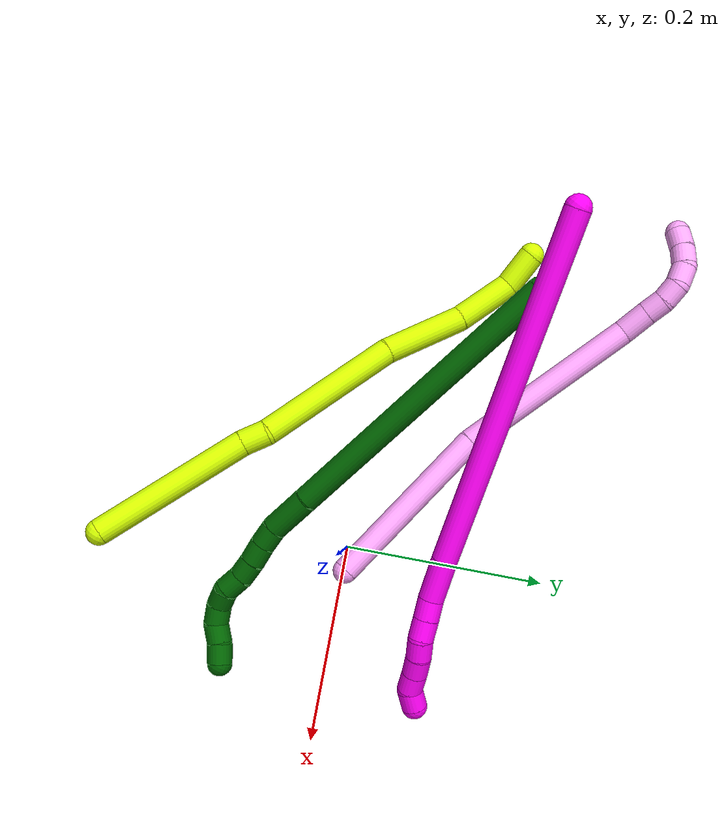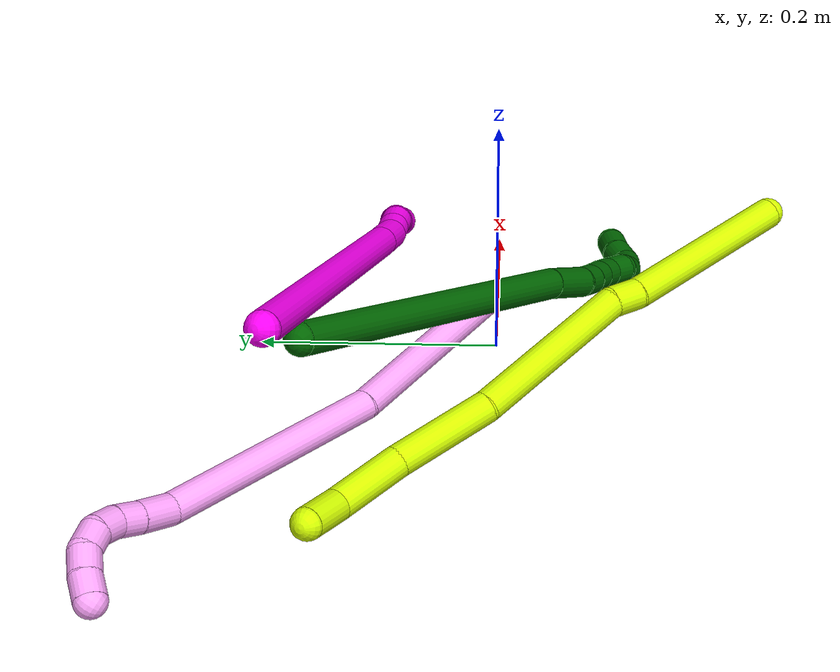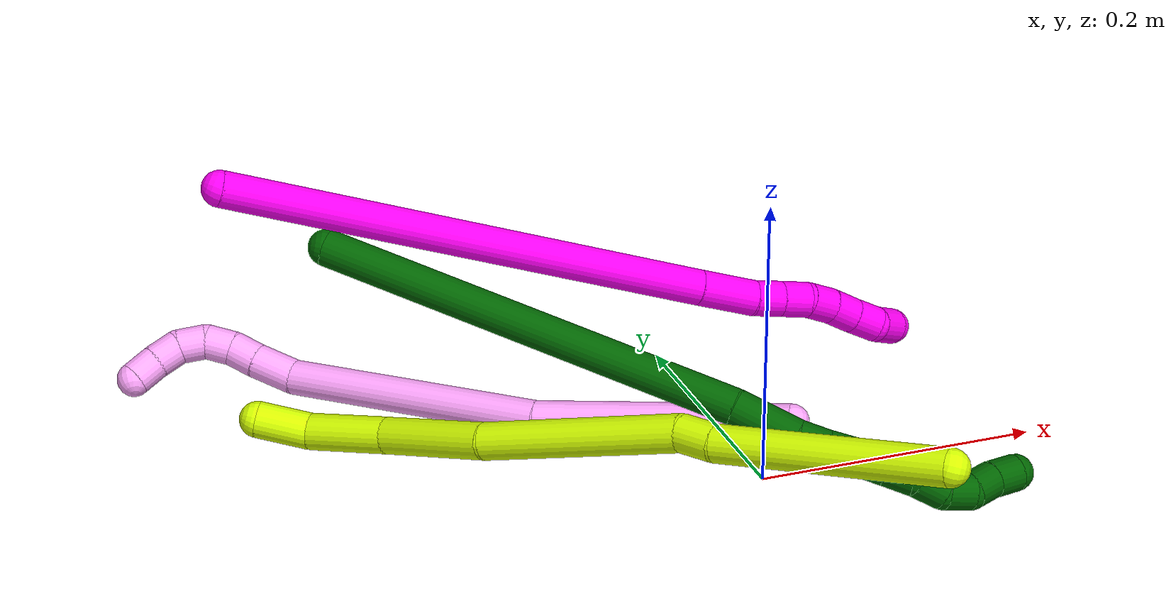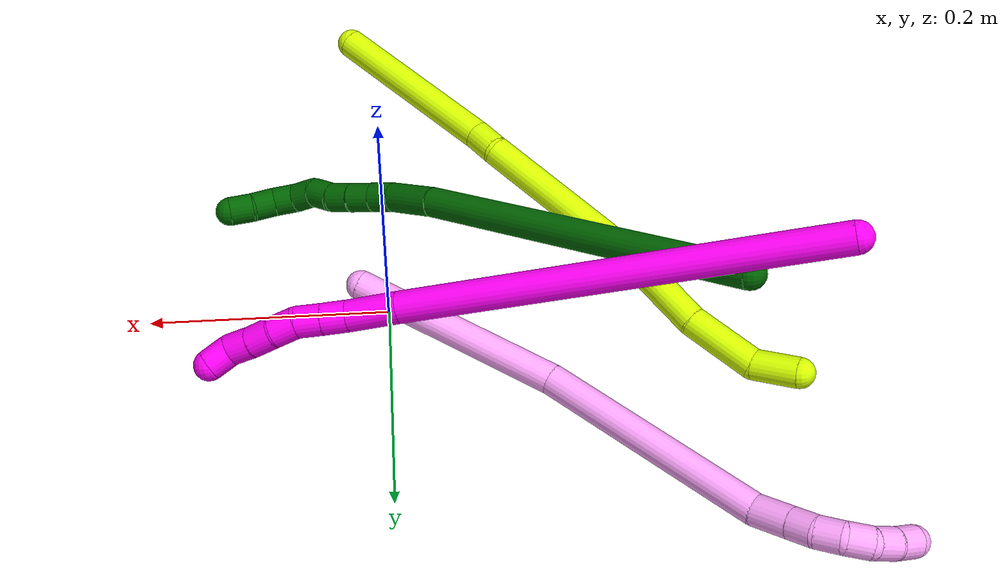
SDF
<sdf version="1.7">
 <world name="default">
  <model name="4">
   <static>0</static>
   <link name="4">
    <collision name="collision-cylinder-e_1_1_4">
     <pose>-0.085356 -0.009624 0.024866 0.369276 -1.26802 -0.272942</pose>
     <geometry><cylinder><radius>0.0125</radius><length>0.178847</length></cylinder></geometry>
     <surface>
      <friction><ode><mu>1.16</mu><mu2>1.16</mu2><slip1>0</slip1><slip2>0</slip2></ode></friction>
      <contact><ode><kp>1e+06</kp><kd>1</kd><max_vel>0</max_vel><min_depth>0.001</min_depth></ode></contact>
     </surface>
    </collision>
    <visual name="visual-cylinder-e_1_1_4">
     <pose>-0.085356 -0.009624 0.024866 0.369276 -1.26802 -0.272942</pose>
     <geometry><cylinder><radius>0.0125</radius><length>0.178847</length></cylinder></geometry>
     <material><ambient>1 0.65098 0.996078 1</ambient></material>
    </visual>
    <collision name="collision-cylinder-e_2_4_5">
     <pose>-0.255584 -0.023144 0.092615 0.090601 -1.10129 -0.055652</pose>
     <geometry><cylinder><radius>0.0125</radius><length>0.190342</length></cylinder></geometry>
     <surface>
      <friction><ode><mu>1.16</mu><mu2>1.16</mu2><slip1>0</slip1><slip2>0</slip2></ode></friction>
      <contact><ode><kp>1e+06</kp><kd>1</kd><max_vel>0</max_vel><min_depth>0.001</min_depth></ode></contact>
     </surface>
    </collision>
    <visual name="visual-cylinder-e_2_4_5">
     <pose>-0.255584 -0.023144 0.092615 0.090601 -1.10129 -0.055652</pose>
     <geometry><cylinder><radius>0.0125</radius><length>0.190342</length></cylinder></geometry>
     <material><ambient>1 0.65098 0.996078 1</ambient></material>
    </visual>
    <collision name="collision-cylinder-e_3_5_6">
     <pose>-0.352237 -0.031432 0.144047 0.474633 -0.886377 -0.228625</pose>
     <geometry><cylinder><radius>0.0125</radius><length>0.030407</length></cylinder></geometry>
     <surface>
      <friction><ode><mu>1.16</mu><mu2>1.16</mu2><slip1>0</slip1><slip2>0</slip2></ode></friction>
      <contact><ode><kp>1e+06</kp><kd>1</kd><max_vel>0</max_vel><min_depth>0.001</min_depth></ode></contact>
     </surface>
    </collision>
    <visual name="visual-cylinder-e_3_5_6">
     <pose>-0.352237 -0.031432 0.144047 0.474633 -0.886377 -0.228625</pose>
     <geometry><cylinder><radius>0.0125</radius><length>0.030407</length></cylinder></geometry>
     <material><ambient>1 0.65098 0.996078 1</ambient></material>
    </visual>
    <collision name="collision-cylinder-e_4_6_7">
     <pose>-0.371413 -0.038845 0.158761 0.455587 -0.822725 -0.201576</pose>
     <geometry><cylinder><radius>0.0125</radius><length>0.020181</length></cylinder></geometry>
     <surface>
      <friction><ode><mu>1.16</mu><mu2>1.16</mu2><slip1>0</slip1><slip2>0</slip2></ode></friction>
      <contact><ode><kp>1e+06</kp><kd>1</kd><max_vel>0</max_vel><min_depth>0.001</min_depth></ode></contact>
     </surface>
    </collision>
    <visual name="visual-cylinder-e_4_6_7">
     <pose>-0.371413 -0.038845 0.158761 0.455587 -0.822725 -0.201576</pose>
     <geometry><cylinder><radius>0.0125</radius><length>0.020181</length></cylinder></geometry>
     <material><ambient>1 0.65098 0.996078 1</ambient></material>
    </visual>
    <collision name="collision-cylinder-e_5_7_8">
     <pose>-0.387229 -0.045692 0.168815 0.777233 -0.995709 -0.43794</pose>
     <geometry><cylinder><radius>0.0125</radius><length>0.020067</length></cylinder></geometry>
     <surface>
      <friction><ode><mu>1.16</mu><mu2>1.16</mu2><slip1>0</slip1><slip2>0</slip2></ode></friction>
      <contact><ode><kp>1e+06</kp><kd>1</kd><max_vel>0</max_vel><min_depth>0.001</min_depth></ode></contact>
     </surface>
    </collision>
    <visual name="visual-cylinder-e_5_7_8">
     <pose>-0.387229 -0.045692 0.168815 0.777233 -0.995709 -0.43794</pose>
     <geometry><cylinder><radius>0.0125</radius><length>0.020067</length></cylinder></geometry>
     <material><ambient>1 0.65098 0.996078 1</ambient></material>
    </visual>
    <collision name="collision-cylinder-e_6_8_9">
     <pose>-0.405226 -0.052566 0.172245 1.72086 -1.25961 -1.40584</pose>
     <geometry><cylinder><radius>0.0125</radius><length>0.020121</length></cylinder></geometry>
     <surface>
      <friction><ode><mu>1.16</mu><mu2>1.16</mu2><slip1>0</slip1><slip2>0</slip2></ode></friction>
      <contact><ode><kp>1e+06</kp><kd>1</kd><max_vel>0</max_vel><min_depth>0.001</min_depth></ode></contact>
     </surface>
    </collision>
    <visual name="visual-cylinder-e_6_8_9">
     <pose>-0.405226 -0.052566 0.172245 1.72086 -1.25961 -1.40584</pose>
     <geometry><cylinder><radius>0.0125</radius><length>0.020121</length></cylinder></geometry>
     <material><ambient>1 0.65098 0.996078 1</ambient></material>
    </visual>
    <collision name="collision-cylinder-e_7_9_10">
     <pose>-0.423236 -0.058141 0.167011 2.65431 -1.00106 -2.2885</pose>
     <geometry><cylinder><radius>0.0125</radius><length>0.020029</length></cylinder></geometry>
     <surface>
      <friction><ode><mu>1.16</mu><mu2>1.16</mu2><slip1>0</slip1><slip2>0</slip2></ode></friction>
      <contact><ode><kp>1e+06</kp><kd>1</kd><max_vel>0</max_vel><min_depth>0.001</min_depth></ode></contact>
     </surface>
    </collision>
    <visual name="visual-cylinder-e_7_9_10">
     <pose>-0.423236 -0.058141 0.167011 2.65431 -1.00106 -2.2885</pose>
     <geometry><cylinder><radius>0.0125</radius><length>0.020029</length></cylinder></geometry>
     <material><ambient>1 0.65098 0.996078 1</ambient></material>
    </visual>
    <collision name="collision-cylinder-e_8_10_2">
     <pose>-0.439195 -0.063434 0.156257 2.70871 -0.851818 -2.23898</pose>
     <geometry><cylinder><radius>0.0125</radius><length>0.020005</length></cylinder></geometry>
     <surface>
      <friction><ode><mu>1.16</mu><mu2>1.16</mu2><slip1>0</slip1><slip2>0</slip2></ode></friction>
      <contact><ode><kp>1e+06</kp><kd>1</kd><max_vel>0</max_vel><min_depth>0.001</min_depth></ode></contact>
     </surface>
    </collision>
    <visual name="visual-cylinder-e_8_10_2">
     <pose>-0.439195 -0.063434 0.156257 2.70871 -0.851818 -2.23898</pose>
     <geometry><cylinder><radius>0.0125</radius><length>0.020005</length></cylinder></geometry>
     <material><ambient>1 0.65098 0.996078 1</ambient></material>
    </visual>
    <collision name="collision-sphere-2">
     <pose>-0.446722 -0.066197 0.150277 0 -0 0</pose>
     <geometry><sphere><radius>0.0125</radius></sphere></geometry>
     <surface>
      <friction><ode><mu>1.16</mu><mu2>1.16</mu2><slip1>0</slip1><slip2>0</slip2></ode></friction>
      <contact><ode><kp>1e+06</kp><kd>1</kd><max_vel>0</max_vel><min_depth>0.001</min_depth></ode></contact>
     </surface>
    </collision>
    <visual name="visual-sphere-2">
     <pose>-0.446722 -0.066197 0.150277 0 -0 0</pose>
     <geometry><sphere><radius>0.0125</radius></sphere></geometry>
     <material><ambient>1 0.65098 0.996078 1</ambient></material>
    </visual>
    <collision name="collision-sphere-10">
     <pose>-0.431668 -0.06067 0.162237 0 -0 0</pose>
     <geometry><sphere><radius>0.0125</radius></sphere></geometry>
     <surface>
      <friction><ode><mu>1.16</mu><mu2>1.16</mu2><slip1>0</slip1><slip2>0</slip2></ode></friction>
      <contact><ode><kp>1e+06</kp><kd>1</kd><max_vel>0</max_vel><min_depth>0.001</min_depth></ode></contact>
     </surface>
    </collision>
    <visual name="visual-sphere-10">
     <pose>-0.431668 -0.06067 0.162237 0 -0 0</pose>
     <geometry><sphere><radius>0.0125</radius></sphere></geometry>
     <material><ambient>1 0.65098 0.996078 1</ambient></material>
    </visual>
    <collision name="collision-sphere-9">
     <pose>-0.414803 -0.055611 0.171784 0 -0 0</pose>
     <geometry><sphere><radius>0.0125</radius></sphere></geometry>
     <surface>
      <friction><ode><mu>1.16</mu><mu2>1.16</mu2><slip1>0</slip1><slip2>0</slip2></ode></friction>
      <contact><ode><kp>1e+06</kp><kd>1</kd><max_vel>0</max_vel><min_depth>0.001</min_depth></ode></contact>
     </surface>
    </collision>
    <visual name="visual-sphere-9">
     <pose>-0.414803 -0.055611 0.171784 0 -0 0</pose>
     <geometry><sphere><radius>0.0125</radius></sphere></geometry>
     <material><ambient>1 0.65098 0.996078 1</ambient></material>
    </visual>
    <collision name="collision-sphere-4">
     <pose>-0.170712 -0.019248 0.049731 0 -0 0</pose>
     <geometry><sphere><radius>0.0125</radius></sphere></geometry>
     <surface>
      <friction><ode><mu>1.16</mu><mu2>1.16</mu2><slip1>0</slip1><slip2>0</slip2></ode></friction>
      <contact><ode><kp>1e+06</kp><kd>1</kd><max_vel>0</max_vel><min_depth>0.001</min_depth></ode></contact>
     </surface>
    </collision>
    <visual name="visual-sphere-4">
     <pose>-0.170712 -0.019248 0.049731 0 -0 0</pose>
     <geometry><sphere><radius>0.0125</radius></sphere></geometry>
     <material><ambient>1 0.65098 0.996078 1</ambient></material>
    </visual>
    <collision name="collision-sphere-1">
     <geometry><sphere><radius>0.0125</radius></sphere></geometry>
     <surface>
      <friction><ode><mu>1.16</mu><mu2>1.16</mu2><slip1>0</slip1><slip2>0</slip2></ode></friction>
      <contact><ode><kp>1e+06</kp><kd>1</kd><max_vel>0</max_vel><min_depth>0.001</min_depth></ode></contact>
     </surface>
    </collision>
    <visual name="visual-sphere-1">
     <geometry><sphere><radius>0.0125</radius></sphere></geometry>
     <material><ambient>1 0.65098 0.996078 1</ambient></material>
    </visual>
    <collision name="collision-sphere-8">
     <pose>-0.395648 -0.04952 0.172705 0 -0 0</pose>
     <geometry><sphere><radius>0.0125</radius></sphere></geometry>
     <surface>
      <friction><ode><mu>1.16</mu><mu2>1.16</mu2><slip1>0</slip1><slip2>0</slip2></ode></friction>
      <contact><ode><kp>1e+06</kp><kd>1</kd><max_vel>0</max_vel><min_depth>0.001</min_depth></ode></contact>
     </surface>
    </collision>
    <visual name="visual-sphere-8">
     <pose>-0.395648 -0.04952 0.172705 0 -0 0</pose>
     <geometry><sphere><radius>0.0125</radius></sphere></geometry>
     <material><ambient>1 0.65098 0.996078 1</ambient></material>
    </visual>
    <collision name="collision-sphere-5">
     <pose>-0.340457 -0.027039 0.135498 0 -0 0</pose>
     <geometry><sphere><radius>0.0125</radius></sphere></geometry>
     <surface>
      <friction><ode><mu>1.16</mu><mu2>1.16</mu2><slip1>0</slip1><slip2>0</slip2></ode></friction>
      <contact><ode><kp>1e+06</kp><kd>1</kd><max_vel>0</max_vel><min_depth>0.001</min_depth></ode></contact>
     </surface>
    </collision>
    <visual name="visual-sphere-5">
     <pose>-0.340457 -0.027039 0.135498 0 -0 0</pose>
     <geometry><sphere><radius>0.0125</radius></sphere></geometry>
     <material><ambient>1 0.65098 0.996078 1</ambient></material>
    </visual>
    <collision name="collision-sphere-6">
     <pose>-0.364016 -0.035825 0.152597 0 -0 0</pose>
     <geometry><sphere><radius>0.0125</radius></sphere></geometry>
     <surface>
      <friction><ode><mu>1.16</mu><mu2>1.16</mu2><slip1>0</slip1><slip2>0</slip2></ode></friction>
      <contact><ode><kp>1e+06</kp><kd>1</kd><max_vel>0</max_vel><min_depth>0.001</min_depth></ode></contact>
     </surface>
    </collision>
    <visual name="visual-sphere-6">
     <pose>-0.364016 -0.035825 0.152597 0 -0 0</pose>
     <geometry><sphere><radius>0.0125</radius></sphere></geometry>
     <material><ambient>1 0.65098 0.996078 1</ambient></material>
    </visual>
    <collision name="collision-sphere-7">
     <pose>-0.378809 -0.041865 0.164924 0 -0 0</pose>
     <geometry><sphere><radius>0.0125</radius></sphere></geometry>
     <surface>
      <friction><ode><mu>1.16</mu><mu2>1.16</mu2><slip1>0</slip1><slip2>0</slip2></ode></friction>
      <contact><ode><kp>1e+06</kp><kd>1</kd><max_vel>0</max_vel><min_depth>0.001</min_depth></ode></contact>
     </surface>
    </collision>
    <visual name="visual-sphere-7">
     <pose>-0.378809 -0.041865 0.164924 0 -0 0</pose>
     <geometry><sphere><radius>0.0125</radius></sphere></geometry>
     <material><ambient>1 0.65098 0.996078 1</ambient></material>
    </visual>
    <inertial>
     <pose>-0.230615 -0.024548 0.085968 0 -0 0</pose>
     <mass>0.5</mass>
     <inertia>
      <ixx>0.000313</ixx>
      <ixy>0</ixy>
      <ixz>0</ixz>
      <iyy>0.001009</iyy>
      <iyz>0</iyz>
      <izz>0.00108</izz>
     </inertia>
    </inertial>
   </link>
   <pose>0.021676 0.004112 0.0377 -0.93583 -0.36242 -0.417703</pose>
  </model>
  <model name="6">
   <static>0</static>
   <link name="6">
    <collision name="collision-cylinder-e_1_1_4">
     <pose>0.046273 -0.013897 0.138156 0.100254 0.321676 0.016278</pose>
     <geometry><cylinder><radius>0.0125</radius><length>0.292721</length></cylinder></geometry>
     <surface>
      <friction><ode><mu>1.16</mu><mu2>1.16</mu2><slip1>0</slip1><slip2>0</slip2></ode></friction>
      <contact><ode><kp>1e+06</kp><kd>1</kd><max_vel>0</max_vel><min_depth>0.001</min_depth></ode></contact>
     </surface>
    </collision>
    <visual name="visual-cylinder-e_1_1_4">
     <pose>0.046273 -0.013897 0.138156 0.100254 0.321676 0.016278</pose>
     <geometry><cylinder><radius>0.0125</radius><length>0.292721</length></cylinder></geometry>
     <material><ambient>0 0.392157 0.003922 1</ambient></material>
    </visual>
    <collision name="collision-cylinder-e_2_4_5">
     <pose>0.100755 -0.027954 0.29688 0.007752 0.37976 0.00149</pose>
     <geometry><cylinder><radius>0.0125</radius><length>0.044293</length></cylinder></geometry>
     <surface>
      <friction><ode><mu>1.16</mu><mu2>1.16</mu2><slip1>0</slip1><slip2>0</slip2></ode></friction>
      <contact><ode><kp>1e+06</kp><kd>1</kd><max_vel>0</max_vel><min_depth>0.001</min_depth></ode></contact>
     </surface>
    </collision>
    <visual name="visual-cylinder-e_2_4_5">
     <pose>0.100755 -0.027954 0.29688 0.007752 0.37976 0.00149</pose>
     <geometry><cylinder><radius>0.0125</radius><length>0.044293</length></cylinder></geometry>
     <material><ambient>0 0.392157 0.003922 1</ambient></material>
    </visual>
    <collision name="collision-cylinder-e_3_5_6">
     <pose>0.110881 -0.027374 0.327486 -0.073542 0.18805 -0.006938</pose>
     <geometry><cylinder><radius>0.0125</radius><length>0.020492</length></cylinder></geometry>
     <surface>
      <friction><ode><mu>1.16</mu><mu2>1.16</mu2><slip1>0</slip1><slip2>0</slip2></ode></friction>
      <contact><ode><kp>1e+06</kp><kd>1</kd><max_vel>0</max_vel><min_depth>0.001</min_depth></ode></contact>
     </surface>
    </collision>
    <visual name="visual-cylinder-e_3_5_6">
     <pose>0.110881 -0.027374 0.327486 -0.073542 0.18805 -0.006938</pose>
     <geometry><cylinder><radius>0.0125</radius><length>0.020492</length></cylinder></geometry>
     <material><ambient>0 0.392157 0.003922 1</ambient></material>
    </visual>
    <collision name="collision-cylinder-e_4_6_7">
     <pose>0.113931 -0.025777 0.348008 -0.081603 0.1075 -0.004393</pose>
     <geometry><cylinder><radius>0.0125</radius><length>0.02116</length></cylinder></geometry>
     <surface>
      <friction><ode><mu>1.16</mu><mu2>1.16</mu2><slip1>0</slip1><slip2>0</slip2></ode></friction>
      <contact><ode><kp>1e+06</kp><kd>1</kd><max_vel>0</max_vel><min_depth>0.001</min_depth></ode></contact>
     </surface>
    </collision>
    <visual name="visual-cylinder-e_4_6_7">
     <pose>0.113931 -0.025777 0.348008 -0.081603 0.1075 -0.004393</pose>
     <geometry><cylinder><radius>0.0125</radius><length>0.02116</length></cylinder></geometry>
     <material><ambient>0 0.392157 0.003922 1</ambient></material>
    </visual>
    <collision name="collision-cylinder-e_5_7_8">
     <pose>0.116929 -0.024383 0.368425 -0.05392 0.1851 -0.005006</pose>
     <geometry><cylinder><radius>0.0125</radius><length>0.02024</length></cylinder></geometry>
     <surface>
      <friction><ode><mu>1.16</mu><mu2>1.16</mu2><slip1>0</slip1><slip2>0</slip2></ode></friction>
      <contact><ode><kp>1e+06</kp><kd>1</kd><max_vel>0</max_vel><min_depth>0.001</min_depth></ode></contact>
     </surface>
    </collision>
    <visual name="visual-cylinder-e_5_7_8">
     <pose>0.116929 -0.024383 0.368425 -0.05392 0.1851 -0.005006</pose>
     <geometry><cylinder><radius>0.0125</radius><length>0.02024</length></cylinder></geometry>
     <material><ambient>0 0.392157 0.003922 1</ambient></material>
    </visual>
    <collision name="collision-cylinder-e_6_8_9">
     <pose>0.122057 -0.025301 0.388242 0.145985 0.315901 0.023292</pose>
     <geometry><cylinder><radius>0.0125</radius><length>0.021023</length></cylinder></geometry>
     <surface>
      <friction><ode><mu>1.16</mu><mu2>1.16</mu2><slip1>0</slip1><slip2>0</slip2></ode></friction>
      <contact><ode><kp>1e+06</kp><kd>1</kd><max_vel>0</max_vel><min_depth>0.001</min_depth></ode></contact>
     </surface>
    </collision>
    <visual name="visual-cylinder-e_6_8_9">
     <pose>0.122057 -0.025301 0.388242 0.145985 0.315901 0.023292</pose>
     <geometry><cylinder><radius>0.0125</radius><length>0.021023</length></cylinder></geometry>
     <material><ambient>0 0.392157 0.003922 1</ambient></material>
    </visual>
    <collision name="collision-cylinder-e_7_9_10">
     <pose>0.126964 -0.023659 0.407507 -0.318734 0.164724 -0.026535</pose>
     <geometry><cylinder><radius>0.0125</radius><length>0.020024</length></cylinder></geometry>
     <surface>
      <friction><ode><mu>1.16</mu><mu2>1.16</mu2><slip1>0</slip1><slip2>0</slip2></ode></friction>
      <contact><ode><kp>1e+06</kp><kd>1</kd><max_vel>0</max_vel><min_depth>0.001</min_depth></ode></contact>
     </surface>
    </collision>
    <visual name="visual-cylinder-e_7_9_10">
     <pose>0.126964 -0.023659 0.407507 -0.318734 0.164724 -0.026535</pose>
     <geometry><cylinder><radius>0.0125</radius><length>0.020024</length></cylinder></geometry>
     <material><ambient>0 0.392157 0.003922 1</ambient></material>
    </visual>
    <collision name="collision-cylinder-e_8_10_11">
     <pose>0.126231 -0.018493 0.426385 -0.214682 -0.239619 0.025943</pose>
     <geometry><cylinder><radius>0.0125</radius><length>0.020017</length></cylinder></geometry>
     <surface>
      <friction><ode><mu>1.16</mu><mu2>1.16</mu2><slip1>0</slip1><slip2>0</slip2></ode></friction>
      <contact><ode><kp>1e+06</kp><kd>1</kd><max_vel>0</max_vel><min_depth>0.001</min_depth></ode></contact>
     </surface>
    </collision>
    <visual name="visual-cylinder-e_8_10_11">
     <pose>0.126231 -0.018493 0.426385 -0.214682 -0.239619 0.025943</pose>
     <geometry><cylinder><radius>0.0125</radius><length>0.020017</length></cylinder></geometry>
     <material><ambient>0 0.392157 0.003922 1</ambient></material>
    </visual>
    <collision name="collision-cylinder-e_9_11_12">
     <pose>0.117379 -0.014282 0.443213 -0.284035 -0.703505 0.104856</pose>
     <geometry><cylinder><radius>0.0125</radius><length>0.020022</length></cylinder></geometry>
     <surface>
      <friction><ode><mu>1.16</mu><mu2>1.16</mu2><slip1>0</slip1><slip2>0</slip2></ode></friction>
      <contact><ode><kp>1e+06</kp><kd>1</kd><max_vel>0</max_vel><min_depth>0.001</min_depth></ode></contact>
     </surface>
    </collision>
    <visual name="visual-cylinder-e_9_11_12">
     <pose>0.117379 -0.014282 0.443213 -0.284035 -0.703505 0.104856</pose>
     <geometry><cylinder><radius>0.0125</radius><length>0.020022</length></cylinder></geometry>
     <material><ambient>0 0.392157 0.003922 1</ambient></material>
    </visual>
    <collision name="collision-cylinder-e_10_12_2">
     <pose>0.106025 -0.010483 0.459116 -0.191262 -0.509351 0.049933</pose>
     <geometry><cylinder><radius>0.0125</radius><length>0.020008</length></cylinder></geometry>
     <surface>
      <friction><ode><mu>1.16</mu><mu2>1.16</mu2><slip1>0</slip1><slip2>0</slip2></ode></friction>
      <contact><ode><kp>1e+06</kp><kd>1</kd><max_vel>0</max_vel><min_depth>0.001</min_depth></ode></contact>
     </surface>
    </collision>
    <visual name="visual-cylinder-e_10_12_2">
     <pose>0.106025 -0.010483 0.459116 -0.191262 -0.509351 0.049933</pose>
     <geometry><cylinder><radius>0.0125</radius><length>0.020008</length></cylinder></geometry>
     <material><ambient>0 0.392157 0.003922 1</ambient></material>
    </visual>
    <collision name="collision-sphere-2">
     <pose>0.101147 -0.008822 0.467691 0 -0 0</pose>
     <geometry><sphere><radius>0.0125</radius></sphere></geometry>
     <surface>
      <friction><ode><mu>1.16</mu><mu2>1.16</mu2><slip1>0</slip1><slip2>0</slip2></ode></friction>
      <contact><ode><kp>1e+06</kp><kd>1</kd><max_vel>0</max_vel><min_depth>0.001</min_depth></ode></contact>
     </surface>
    </collision>
    <visual name="visual-sphere-2">
     <pose>0.101147 -0.008822 0.467691 0 -0 0</pose>
     <geometry><sphere><radius>0.0125</radius></sphere></geometry>
     <material><ambient>0 0.392157 0.003922 1</ambient></material>
    </visual>
    <collision name="collision-sphere-12">
     <pose>0.110903 -0.012143 0.450541 0 -0 0</pose>
     <geometry><sphere><radius>0.0125</radius></sphere></geometry>
     <surface>
      <friction><ode><mu>1.16</mu><mu2>1.16</mu2><slip1>0</slip1><slip2>0</slip2></ode></friction>
      <contact><ode><kp>1e+06</kp><kd>1</kd><max_vel>0</max_vel><min_depth>0.001</min_depth></ode></contact>
     </surface>
    </collision>
    <visual name="visual-sphere-12">
     <pose>0.110903 -0.012143 0.450541 0 -0 0</pose>
     <geometry><sphere><radius>0.0125</radius></sphere></geometry>
     <material><ambient>0 0.392157 0.003922 1</ambient></material>
    </visual>
    <collision name="collision-sphere-11">
     <pose>0.123855 -0.016422 0.435884 0 -0 0</pose>
     <geometry><sphere><radius>0.0125</radius></sphere></geometry>
     <surface>
      <friction><ode><mu>1.16</mu><mu2>1.16</mu2><slip1>0</slip1><slip2>0</slip2></ode></friction>
      <contact><ode><kp>1e+06</kp><kd>1</kd><max_vel>0</max_vel><min_depth>0.001</min_depth></ode></contact>
     </surface>
    </collision>
    <visual name="visual-sphere-11">
     <pose>0.123855 -0.016422 0.435884 0 -0 0</pose>
     <geometry><sphere><radius>0.0125</radius></sphere></geometry>
     <material><ambient>0 0.392157 0.003922 1</ambient></material>
    </visual>
    <collision name="collision-sphere-10">
     <pose>0.128606 -0.020564 0.416885 0 -0 0</pose>
     <geometry><sphere><radius>0.0125</radius></sphere></geometry>
     <surface>
      <friction><ode><mu>1.16</mu><mu2>1.16</mu2><slip1>0</slip1><slip2>0</slip2></ode></friction>
      <contact><ode><kp>1e+06</kp><kd>1</kd><max_vel>0</max_vel><min_depth>0.001</min_depth></ode></contact>
     </surface>
    </collision>
    <visual name="visual-sphere-10">
     <pose>0.128606 -0.020564 0.416885 0 -0 0</pose>
     <geometry><sphere><radius>0.0125</radius></sphere></geometry>
     <material><ambient>0 0.392157 0.003922 1</ambient></material>
    </visual>
    <collision name="collision-sphere-9">
     <pose>0.125323 -0.026754 0.398128 0 -0 0</pose>
     <geometry><sphere><radius>0.0125</radius></sphere></geometry>
     <surface>
      <friction><ode><mu>1.16</mu><mu2>1.16</mu2><slip1>0</slip1><slip2>0</slip2></ode></friction>
      <contact><ode><kp>1e+06</kp><kd>1</kd><max_vel>0</max_vel><min_depth>0.001</min_depth></ode></contact>
     </surface>
    </collision>
    <visual name="visual-sphere-9">
     <pose>0.125323 -0.026754 0.398128 0 -0 0</pose>
     <geometry><sphere><radius>0.0125</radius></sphere></geometry>
     <material><ambient>0 0.392157 0.003922 1</ambient></material>
    </visual>
    <collision name="collision-sphere-4">
     <pose>0.092546 -0.027794 0.276312 0 -0 0</pose>
     <geometry><sphere><radius>0.0125</radius></sphere></geometry>
     <surface>
      <friction><ode><mu>1.16</mu><mu2>1.16</mu2><slip1>0</slip1><slip2>0</slip2></ode></friction>
      <contact><ode><kp>1e+06</kp><kd>1</kd><max_vel>0</max_vel><min_depth>0.001</min_depth></ode></contact>
     </surface>
    </collision>
    <visual name="visual-sphere-4">
     <pose>0.092546 -0.027794 0.276312 0 -0 0</pose>
     <geometry><sphere><radius>0.0125</radius></sphere></geometry>
     <material><ambient>0 0.392157 0.003922 1</ambient></material>
    </visual>
    <collision name="collision-sphere-1">
     <geometry><sphere><radius>0.0125</radius></sphere></geometry>
     <surface>
      <friction><ode><mu>1.16</mu><mu2>1.16</mu2><slip1>0</slip1><slip2>0</slip2></ode></friction>
      <contact><ode><kp>1e+06</kp><kd>1</kd><max_vel>0</max_vel><min_depth>0.001</min_depth></ode></contact>
     </surface>
    </collision>
    <visual name="visual-sphere-1">
     <geometry><sphere><radius>0.0125</radius></sphere></geometry>
     <material><ambient>0 0.392157 0.003922 1</ambient></material>
    </visual>
    <collision name="collision-sphere-8">
     <pose>0.118791 -0.023847 0.378357 0 -0 0</pose>
     <geometry><sphere><radius>0.0125</radius></sphere></geometry>
     <surface>
      <friction><ode><mu>1.16</mu><mu2>1.16</mu2><slip1>0</slip1><slip2>0</slip2></ode></friction>
      <contact><ode><kp>1e+06</kp><kd>1</kd><max_vel>0</max_vel><min_depth>0.001</min_depth></ode></contact>
     </surface>
    </collision>
    <visual name="visual-sphere-8">
     <pose>0.118791 -0.023847 0.378357 0 -0 0</pose>
     <geometry><sphere><radius>0.0125</radius></sphere></geometry>
     <material><ambient>0 0.392157 0.003922 1</ambient></material>
    </visual>
    <collision name="collision-sphere-5">
     <pose>0.108965 -0.028113 0.317448 0 -0 0</pose>
     <geometry><sphere><radius>0.0125</radius></sphere></geometry>
     <surface>
      <friction><ode><mu>1.16</mu><mu2>1.16</mu2><slip1>0</slip1><slip2>0</slip2></ode></friction>
      <contact><ode><kp>1e+06</kp><kd>1</kd><max_vel>0</max_vel><min_depth>0.001</min_depth></ode></contact>
     </surface>
    </collision>
    <visual name="visual-sphere-5">
     <pose>0.108965 -0.028113 0.317448 0 -0 0</pose>
     <geometry><sphere><radius>0.0125</radius></sphere></geometry>
     <material><ambient>0 0.392157 0.003922 1</ambient></material>
    </visual>
    <collision name="collision-sphere-6">
     <pose>0.112796 -0.026634 0.337524 0 -0 0</pose>
     <geometry><sphere><radius>0.0125</radius></sphere></geometry>
     <surface>
      <friction><ode><mu>1.16</mu><mu2>1.16</mu2><slip1>0</slip1><slip2>0</slip2></ode></friction>
      <contact><ode><kp>1e+06</kp><kd>1</kd><max_vel>0</max_vel><min_depth>0.001</min_depth></ode></contact>
     </surface>
    </collision>
    <visual name="visual-sphere-6">
     <pose>0.112796 -0.026634 0.337524 0 -0 0</pose>
     <geometry><sphere><radius>0.0125</radius></sphere></geometry>
     <material><ambient>0 0.392157 0.003922 1</ambient></material>
    </visual>
    <collision name="collision-sphere-7">
     <pose>0.115066 -0.024919 0.358492 0 -0 0</pose>
     <geometry><sphere><radius>0.0125</radius></sphere></geometry>
     <surface>
      <friction><ode><mu>1.16</mu><mu2>1.16</mu2><slip1>0</slip1><slip2>0</slip2></ode></friction>
      <contact><ode><kp>1e+06</kp><kd>1</kd><max_vel>0</max_vel><min_depth>0.001</min_depth></ode></contact>
     </surface>
    </collision>
    <visual name="visual-sphere-7">
     <pose>0.115066 -0.024919 0.358492 0 -0 0</pose>
     <geometry><sphere><radius>0.0125</radius></sphere></geometry>
     <material><ambient>0 0.392157 0.003922 1</ambient></material>
    </visual>
    <inertial>
     <pose>0.074328 -0.017555 0.236079 0 -0 0</pose>
     <mass>0.5</mass>
     <inertia>
      <ixx>0.002054</ixx>
      <ixy>0</ixy>
      <ixz>0</ixz>
      <iyy>0.002145</iyy>
      <iyz>0</iyz>
      <izz>-0.000432</izz>
     </inertia>
    </inertial>
   </link>
   <pose>-0.263126 0.131698 0.156735 -1.76815 0.583358 -2.01576</pose>
  </model>
  <model name="10">
   <static>0</static>
   <link name="10">
    <collision name="collision-cylinder-e_1_1_4">
     <pose>0.043054 -0.011564 0.163353 0.070673 0.25709 0.009139</pose>
     <geometry><cylinder><radius>0.0125</radius><length>0.338654</length></cylinder></geometry>
     <surface>
      <friction><ode><mu>1.16</mu><mu2>1.16</mu2><slip1>0</slip1><slip2>0</slip2></ode></friction>
      <contact><ode><kp>1e+06</kp><kd>1</kd><max_vel>0</max_vel><min_depth>0.001</min_depth></ode></contact>
     </surface>
    </collision>
    <visual name="visual-cylinder-e_1_1_4">
     <pose>0.043054 -0.011564 0.163353 0.070673 0.25709 0.009139</pose>
     <geometry><cylinder><radius>0.0125</radius><length>0.338654</length></cylinder></geometry>
     <material><ambient>1 0 0.964706 1</ambient></material>
    </visual>
    <collision name="collision-cylinder-e_2_4_5">
     <pose>0.091725 -0.024784 0.346319 0.084254 0.277976 0.011793</pose>
     <geometry><cylinder><radius>0.0125</radius><length>0.040937</length></cylinder></geometry>
     <surface>
      <friction><ode><mu>1.16</mu><mu2>1.16</mu2><slip1>0</slip1><slip2>0</slip2></ode></friction>
      <contact><ode><kp>1e+06</kp><kd>1</kd><max_vel>0</max_vel><min_depth>0.001</min_depth></ode></contact>
     </surface>
    </collision>
    <visual name="visual-cylinder-e_2_4_5">
     <pose>0.091725 -0.024784 0.346319 0.084254 0.277976 0.011793</pose>
     <geometry><cylinder><radius>0.0125</radius><length>0.040937</length></cylinder></geometry>
     <material><ambient>1 0 0.964706 1</ambient></material>
    </visual>
    <collision name="collision-cylinder-e_3_5_6">
     <pose>0.101451 -0.026639 0.375102 0.021616 0.421133 0.00462</pose>
     <geometry><cylinder><radius>0.0125</radius><length>0.020101</length></cylinder></geometry>
     <surface>
      <friction><ode><mu>1.16</mu><mu2>1.16</mu2><slip1>0</slip1><slip2>0</slip2></ode></friction>
      <contact><ode><kp>1e+06</kp><kd>1</kd><max_vel>0</max_vel><min_depth>0.001</min_depth></ode></contact>
     </surface>
    </collision>
    <visual name="visual-cylinder-e_3_5_6">
     <pose>0.101451 -0.026639 0.375102 0.021616 0.421133 0.00462</pose>
     <geometry><cylinder><radius>0.0125</radius><length>0.020101</length></cylinder></geometry>
     <material><ambient>1 0 0.964706 1</ambient></material>
    </visual>
    <collision name="collision-cylinder-e_4_6_7">
     <pose>0.109543 -0.02688 0.393611 0.004642 0.403162 0.000949</pose>
     <geometry><cylinder><radius>0.0125</radius><length>0.020305</length></cylinder></geometry>
     <surface>
      <friction><ode><mu>1.16</mu><mu2>1.16</mu2><slip1>0</slip1><slip2>0</slip2></ode></friction>
      <contact><ode><kp>1e+06</kp><kd>1</kd><max_vel>0</max_vel><min_depth>0.001</min_depth></ode></contact>
     </surface>
    </collision>
    <visual name="visual-cylinder-e_4_6_7">
     <pose>0.109543 -0.02688 0.393611 0.004642 0.403162 0.000949</pose>
     <geometry><cylinder><radius>0.0125</radius><length>0.020305</length></cylinder></geometry>
     <material><ambient>1 0 0.964706 1</ambient></material>
    </visual>
    <collision name="collision-cylinder-e_5_7_8">
     <pose>0.117064 -0.029895 0.411819 0.323243 0.361606 0.059591</pose>
     <geometry><cylinder><radius>0.0125</radius><length>0.020001</length></cylinder></geometry>
     <surface>
      <friction><ode><mu>1.16</mu><mu2>1.16</mu2><slip1>0</slip1><slip2>0</slip2></ode></friction>
      <contact><ode><kp>1e+06</kp><kd>1</kd><max_vel>0</max_vel><min_depth>0.001</min_depth></ode></contact>
     </surface>
    </collision>
    <visual name="visual-cylinder-e_5_7_8">
     <pose>0.117064 -0.029895 0.411819 0.323243 0.361606 0.059591</pose>
     <geometry><cylinder><radius>0.0125</radius><length>0.020001</length></cylinder></geometry>
     <material><ambient>1 0 0.964706 1</ambient></material>
    </visual>
    <collision name="collision-cylinder-e_6_8_9">
     <pose>0.122752 -0.03606 0.429918 0.333092 0.216711 0.036569</pose>
     <geometry><cylinder><radius>0.0125</radius><length>0.020001</length></cylinder></geometry>
     <surface>
      <friction><ode><mu>1.16</mu><mu2>1.16</mu2><slip1>0</slip1><slip2>0</slip2></ode></friction>
      <contact><ode><kp>1e+06</kp><kd>1</kd><max_vel>0</max_vel><min_depth>0.001</min_depth></ode></contact>
     </surface>
    </collision>
    <visual name="visual-cylinder-e_6_8_9">
     <pose>0.122752 -0.03606 0.429918 0.333092 0.216711 0.036569</pose>
     <geometry><cylinder><radius>0.0125</radius><length>0.020001</length></cylinder></geometry>
     <material><ambient>1 0 0.964706 1</ambient></material>
    </visual>
    <collision name="collision-cylinder-e_7_9_10">
     <pose>0.12698 -0.041742 0.448608 0.257256 0.20927 0.027165</pose>
     <geometry><cylinder><radius>0.0125</radius><length>0.02</length></cylinder></geometry>
     <surface>
      <friction><ode><mu>1.16</mu><mu2>1.16</mu2><slip1>0</slip1><slip2>0</slip2></ode></friction>
      <contact><ode><kp>1e+06</kp><kd>1</kd><max_vel>0</max_vel><min_depth>0.001</min_depth></ode></contact>
     </surface>
    </collision>
    <visual name="visual-cylinder-e_7_9_10">
     <pose>0.12698 -0.041742 0.448608 0.257256 0.20927 0.027165</pose>
     <geometry><cylinder><radius>0.0125</radius><length>0.02</length></cylinder></geometry>
     <material><ambient>1 0 0.964706 1</ambient></material>
    </visual>
    <collision name="collision-cylinder-e_8_10_2">
     <pose>0.134535 -0.048914 0.465001 0.594098 0.579745 0.182102</pose>
     <geometry><cylinder><radius>0.0125</radius><length>0.02</length></cylinder></geometry>
     <surface>
      <friction><ode><mu>1.16</mu><mu2>1.16</mu2><slip1>0</slip1><slip2>0</slip2></ode></friction>
      <contact><ode><kp>1e+06</kp><kd>1</kd><max_vel>0</max_vel><min_depth>0.001</min_depth></ode></contact>
     </surface>
    </collision>
    <visual name="visual-cylinder-e_8_10_2">
     <pose>0.134535 -0.048914 0.465001 0.594098 0.579745 0.182102</pose>
     <geometry><cylinder><radius>0.0125</radius><length>0.02</length></cylinder></geometry>
     <material><ambient>1 0 0.964706 1</ambient></material>
    </visual>
    <collision name="collision-sphere-2">
     <pose>0.140014 -0.053597 0.471933 0 -0 0</pose>
     <geometry><sphere><radius>0.0125</radius></sphere></geometry>
     <surface>
      <friction><ode><mu>1.16</mu><mu2>1.16</mu2><slip1>0</slip1><slip2>0</slip2></ode></friction>
      <contact><ode><kp>1e+06</kp><kd>1</kd><max_vel>0</max_vel><min_depth>0.001</min_depth></ode></contact>
     </surface>
    </collision>
    <visual name="visual-sphere-2">
     <pose>0.140014 -0.053597 0.471933 0 -0 0</pose>
     <geometry><sphere><radius>0.0125</radius></sphere></geometry>
     <material><ambient>1 0 0.964706 1</ambient></material>
    </visual>
    <collision name="collision-sphere-10">
     <pose>0.129057 -0.044231 0.458068 0 -0 0</pose>
     <geometry><sphere><radius>0.0125</radius></sphere></geometry>
     <surface>
      <friction><ode><mu>1.16</mu><mu2>1.16</mu2><slip1>0</slip1><slip2>0</slip2></ode></friction>
      <contact><ode><kp>1e+06</kp><kd>1</kd><max_vel>0</max_vel><min_depth>0.001</min_depth></ode></contact>
     </surface>
    </collision>
    <visual name="visual-sphere-10">
     <pose>0.129057 -0.044231 0.458068 0 -0 0</pose>
     <geometry><sphere><radius>0.0125</radius></sphere></geometry>
     <material><ambient>1 0 0.964706 1</ambient></material>
    </visual>
    <collision name="collision-sphere-9">
     <pose>0.124902 -0.039253 0.439148 0 -0 0</pose>
     <geometry><sphere><radius>0.0125</radius></sphere></geometry>
     <surface>
      <friction><ode><mu>1.16</mu><mu2>1.16</mu2><slip1>0</slip1><slip2>0</slip2></ode></friction>
      <contact><ode><kp>1e+06</kp><kd>1</kd><max_vel>0</max_vel><min_depth>0.001</min_depth></ode></contact>
     </surface>
    </collision>
    <visual name="visual-sphere-9">
     <pose>0.124902 -0.039253 0.439148 0 -0 0</pose>
     <geometry><sphere><radius>0.0125</radius></sphere></geometry>
     <material><ambient>1 0 0.964706 1</ambient></material>
    </visual>
    <collision name="collision-sphere-4">
     <pose>0.086109 -0.023128 0.326706 0 -0 0</pose>
     <geometry><sphere><radius>0.0125</radius></sphere></geometry>
     <surface>
      <friction><ode><mu>1.16</mu><mu2>1.16</mu2><slip1>0</slip1><slip2>0</slip2></ode></friction>
      <contact><ode><kp>1e+06</kp><kd>1</kd><max_vel>0</max_vel><min_depth>0.001</min_depth></ode></contact>
     </surface>
    </collision>
    <visual name="visual-sphere-4">
     <pose>0.086109 -0.023128 0.326706 0 -0 0</pose>
     <geometry><sphere><radius>0.0125</radius></sphere></geometry>
     <material><ambient>1 0 0.964706 1</ambient></material>
    </visual>
    <collision name="collision-sphere-1">
     <geometry><sphere><radius>0.0125</radius></sphere></geometry>
     <surface>
      <friction><ode><mu>1.16</mu><mu2>1.16</mu2><slip1>0</slip1><slip2>0</slip2></ode></friction>
      <contact><ode><kp>1e+06</kp><kd>1</kd><max_vel>0</max_vel><min_depth>0.001</min_depth></ode></contact>
     </surface>
    </collision>
    <visual name="visual-sphere-1">
     <geometry><sphere><radius>0.0125</radius></sphere></geometry>
     <material><ambient>1 0 0.964706 1</ambient></material>
    </visual>
    <collision name="collision-sphere-8">
     <pose>0.120602 -0.032866 0.420688 0 -0 0</pose>
     <geometry><sphere><radius>0.0125</radius></sphere></geometry>
     <surface>
      <friction><ode><mu>1.16</mu><mu2>1.16</mu2><slip1>0</slip1><slip2>0</slip2></ode></friction>
      <contact><ode><kp>1e+06</kp><kd>1</kd><max_vel>0</max_vel><min_depth>0.001</min_depth></ode></contact>
     </surface>
    </collision>
    <visual name="visual-sphere-8">
     <pose>0.120602 -0.032866 0.420688 0 -0 0</pose>
     <geometry><sphere><radius>0.0125</radius></sphere></geometry>
     <material><ambient>1 0 0.964706 1</ambient></material>
    </visual>
    <collision name="collision-sphere-5">
     <pose>0.097342 -0.026441 0.365932 0 -0 0</pose>
     <geometry><sphere><radius>0.0125</radius></sphere></geometry>
     <surface>
      <friction><ode><mu>1.16</mu><mu2>1.16</mu2><slip1>0</slip1><slip2>0</slip2></ode></friction>
      <contact><ode><kp>1e+06</kp><kd>1</kd><max_vel>0</max_vel><min_depth>0.001</min_depth></ode></contact>
     </surface>
    </collision>
    <visual name="visual-sphere-5">
     <pose>0.097342 -0.026441 0.365932 0 -0 0</pose>
     <geometry><sphere><radius>0.0125</radius></sphere></geometry>
     <material><ambient>1 0 0.964706 1</ambient></material>
    </visual>
    <collision name="collision-sphere-6">
     <pose>0.10556 -0.026837 0.384273 0 -0 0</pose>
     <geometry><sphere><radius>0.0125</radius></sphere></geometry>
     <surface>
      <friction><ode><mu>1.16</mu><mu2>1.16</mu2><slip1>0</slip1><slip2>0</slip2></ode></friction>
      <contact><ode><kp>1e+06</kp><kd>1</kd><max_vel>0</max_vel><min_depth>0.001</min_depth></ode></contact>
     </surface>
    </collision>
    <visual name="visual-sphere-6">
     <pose>0.10556 -0.026837 0.384273 0 -0 0</pose>
     <geometry><sphere><radius>0.0125</radius></sphere></geometry>
     <material><ambient>1 0 0.964706 1</ambient></material>
    </visual>
    <collision name="collision-sphere-7">
     <pose>0.113526 -0.026924 0.402949 0 -0 0</pose>
     <geometry><sphere><radius>0.0125</radius></sphere></geometry>
     <surface>
      <friction><ode><mu>1.16</mu><mu2>1.16</mu2><slip1>0</slip1><slip2>0</slip2></ode></friction>
      <contact><ode><kp>1e+06</kp><kd>1</kd><max_vel>0</max_vel><min_depth>0.001</min_depth></ode></contact>
     </surface>
    </collision>
    <visual name="visual-sphere-7">
     <pose>0.113526 -0.026924 0.402949 0 -0 0</pose>
     <geometry><sphere><radius>0.0125</radius></sphere></geometry>
     <material><ambient>1 0 0.964706 1</ambient></material>
    </visual>
    <inertial>
     <pose>0.065252 -0.018289 0.240276 0 -0 0</pose>
     <mass>0.5</mass>
     <inertia>
      <ixx>0.003198</ixx>
      <ixy>0</ixy>
      <ixz>0</ixz>
      <iyy>0.003283</iyy>
      <iyz>0</iyz>
      <izz>-0.00057</izz>
     </inertia>
    </inertial>
   </link>
   <pose>-0.329163 0.147312 0.202591 1.98874 -0.457943 0.945135</pose>
  </model>
  <model name="15">
   <static>0</static>
   <link name="15">
    <collision name="collision-cylinder-e_1_1_4">
     <pose>-0.000561 -0.002561 -0.018395 3.00328 -0.030192 -0.429211</pose>
     <geometry><cylinder><radius>0.0125</radius><length>0.037162</length></cylinder></geometry>
     <surface>
      <friction><ode><mu>1.16</mu><mu2>1.16</mu2><slip1>0</slip1><slip2>0</slip2></ode></friction>
      <contact><ode><kp>1e+06</kp><kd>1</kd><max_vel>0</max_vel><min_depth>0.001</min_depth></ode></contact>
     </surface>
    </collision>
    <visual name="visual-cylinder-e_1_1_4">
     <pose>-0.000561 -0.002561 -0.018395 3.00328 -0.030192 -0.429211</pose>
     <geometry><cylinder><radius>0.0125</radius><length>0.037162</length></cylinder></geometry>
     <material><ambient>0.835294 1 0 1</ambient></material>
    </visual>
    <collision name="collision-cylinder-e_2_4_5">
     <pose>-0.002067 -0.021378 -0.061686 2.5631 -0.03178 -0.106696</pose>
     <geometry><cylinder><radius>0.0125</radius><length>0.059496</length></cylinder></geometry>
     <surface>
      <friction><ode><mu>1.16</mu><mu2>1.16</mu2><slip1>0</slip1><slip2>0</slip2></ode></friction>
      <contact><ode><kp>1e+06</kp><kd>1</kd><max_vel>0</max_vel><min_depth>0.001</min_depth></ode></contact>
     </surface>
    </collision>
    <visual name="visual-cylinder-e_2_4_5">
     <pose>-0.002067 -0.021378 -0.061686 2.5631 -0.03178 -0.106696</pose>
     <geometry><cylinder><radius>0.0125</radius><length>0.059496</length></cylinder></geometry>
     <material><ambient>0.835294 1 0 1</ambient></material>
    </visual>
    <collision name="collision-cylinder-e_3_5_6">
     <pose>-0.007347 -0.065014 -0.116377 2.39844 -0.106723 -0.272438</pose>
     <geometry><cylinder><radius>0.0125</radius><length>0.081392</length></cylinder></geometry>
     <surface>
      <friction><ode><mu>1.16</mu><mu2>1.16</mu2><slip1>0</slip1><slip2>0</slip2></ode></friction>
      <contact><ode><kp>1e+06</kp><kd>1</kd><max_vel>0</max_vel><min_depth>0.001</min_depth></ode></contact>
     </surface>
    </collision>
    <visual name="visual-cylinder-e_3_5_6">
     <pose>-0.007347 -0.065014 -0.116377 2.39844 -0.106723 -0.272438</pose>
     <geometry><cylinder><radius>0.0125</radius><length>0.081392</length></cylinder></geometry>
     <material><ambient>0.835294 1 0 1</ambient></material>
    </visual>
    <collision name="collision-cylinder-e_4_6_7">
     <pose>-0.009465 -0.134738 -0.202948 2.50078 0.03129 0.094229</pose>
     <geometry><cylinder><radius>0.0125</radius><length>0.141725</length></cylinder></geometry>
     <surface>
      <friction><ode><mu>1.16</mu><mu2>1.16</mu2><slip1>0</slip1><slip2>0</slip2></ode></friction>
      <contact><ode><kp>1e+06</kp><kd>1</kd><max_vel>0</max_vel><min_depth>0.001</min_depth></ode></contact>
     </surface>
    </collision>
    <visual name="visual-cylinder-e_4_6_7">
     <pose>-0.009465 -0.134738 -0.202948 2.50078 0.03129 0.094229</pose>
     <geometry><cylinder><radius>0.0125</radius><length>0.141725</length></cylinder></geometry>
     <material><ambient>0.835294 1 0 1</ambient></material>
    </visual>
    <collision name="collision-cylinder-e_5_7_8">
     <pose>-0.010708 -0.183964 -0.269703 2.53784 -0.278049 -0.844637</pose>
     <geometry><cylinder><radius>0.0125</radius><length>0.025211</length></cylinder></geometry>
     <surface>
      <friction><ode><mu>1.16</mu><mu2>1.16</mu2><slip1>0</slip1><slip2>0</slip2></ode></friction>
      <contact><ode><kp>1e+06</kp><kd>1</kd><max_vel>0</max_vel><min_depth>0.001</min_depth></ode></contact>
     </surface>
    </collision>
    <visual name="visual-cylinder-e_5_7_8">
     <pose>-0.010708 -0.183964 -0.269703 2.53784 -0.278049 -0.844637</pose>
     <geometry><cylinder><radius>0.0125</radius><length>0.025211</length></cylinder></geometry>
     <material><ambient>0.835294 1 0 1</ambient></material>
    </visual>
    <collision name="collision-cylinder-e_6_8_2">
     <pose>-0.020887 -0.233529 -0.344026 2.55589 -0.086796 -0.286077</pose>
     <geometry><cylinder><radius>0.0125</radius><length>0.155013</length></cylinder></geometry>
     <surface>
      <friction><ode><mu>1.16</mu><mu2>1.16</mu2><slip1>0</slip1><slip2>0</slip2></ode></friction>
      <contact><ode><kp>1e+06</kp><kd>1</kd><max_vel>0</max_vel><min_depth>0.001</min_depth></ode></contact>
     </surface>
    </collision>
    <visual name="visual-cylinder-e_6_8_2">
     <pose>-0.020887 -0.233529 -0.344026 2.55589 -0.086796 -0.286077</pose>
     <geometry><cylinder><radius>0.0125</radius><length>0.155013</length></cylinder></geometry>
     <material><ambient>0.835294 1 0 1</ambient></material>
    </visual>
    <collision name="collision-sphere-2">
     <pose>-0.027606 -0.276212 -0.408371 0 -0 0</pose>
     <geometry><sphere><radius>0.0125</radius></sphere></geometry>
     <surface>
      <friction><ode><mu>1.16</mu><mu2>1.16</mu2><slip1>0</slip1><slip2>0</slip2></ode></friction>
      <contact><ode><kp>1e+06</kp><kd>1</kd><max_vel>0</max_vel><min_depth>0.001</min_depth></ode></contact>
     </surface>
    </collision>
    <visual name="visual-sphere-2">
     <pose>-0.027606 -0.276212 -0.408371 0 -0 0</pose>
     <geometry><sphere><radius>0.0125</radius></sphere></geometry>
     <material><ambient>0.835294 1 0 1</ambient></material>
    </visual>
    <collision name="collision-sphere-4">
     <pose>-0.001122 -0.005121 -0.03679 0 -0 0</pose>
     <geometry><sphere><radius>0.0125</radius></sphere></geometry>
     <surface>
      <friction><ode><mu>1.16</mu><mu2>1.16</mu2><slip1>0</slip1><slip2>0</slip2></ode></friction>
      <contact><ode><kp>1e+06</kp><kd>1</kd><max_vel>0</max_vel><min_depth>0.001</min_depth></ode></contact>
     </surface>
    </collision>
    <visual name="visual-sphere-4">
     <pose>-0.001122 -0.005121 -0.03679 0 -0 0</pose>
     <geometry><sphere><radius>0.0125</radius></sphere></geometry>
     <material><ambient>0.835294 1 0 1</ambient></material>
    </visual>
    <collision name="collision-sphere-1">
     <geometry><sphere><radius>0.0125</radius></sphere></geometry>
     <surface>
      <friction><ode><mu>1.16</mu><mu2>1.16</mu2><slip1>0</slip1><slip2>0</slip2></ode></friction>
      <contact><ode><kp>1e+06</kp><kd>1</kd><max_vel>0</max_vel><min_depth>0.001</min_depth></ode></contact>
     </surface>
    </collision>
    <visual name="visual-sphere-1">
     <geometry><sphere><radius>0.0125</radius></sphere></geometry>
     <material><ambient>0.835294 1 0 1</ambient></material>
    </visual>
    <collision name="collision-sphere-8">
     <pose>-0.014168 -0.190846 -0.279682 0 -0 0</pose>
     <geometry><sphere><radius>0.0125</radius></sphere></geometry>
     <surface>
      <friction><ode><mu>1.16</mu><mu2>1.16</mu2><slip1>0</slip1><slip2>0</slip2></ode></friction>
      <contact><ode><kp>1e+06</kp><kd>1</kd><max_vel>0</max_vel><min_depth>0.001</min_depth></ode></contact>
     </surface>
    </collision>
    <visual name="visual-sphere-8">
     <pose>-0.014168 -0.190846 -0.279682 0 -0 0</pose>
     <geometry><sphere><radius>0.0125</radius></sphere></geometry>
     <material><ambient>0.835294 1 0 1</ambient></material>
    </visual>
    <collision name="collision-sphere-5">
     <pose>-0.003012 -0.037635 -0.086581 0 -0 0</pose>
     <geometry><sphere><radius>0.0125</radius></sphere></geometry>
     <surface>
      <friction><ode><mu>1.16</mu><mu2>1.16</mu2><slip1>0</slip1><slip2>0</slip2></ode></friction>
      <contact><ode><kp>1e+06</kp><kd>1</kd><max_vel>0</max_vel><min_depth>0.001</min_depth></ode></contact>
     </surface>
    </collision>
    <visual name="visual-sphere-5">
     <pose>-0.003012 -0.037635 -0.086581 0 -0 0</pose>
     <geometry><sphere><radius>0.0125</radius></sphere></geometry>
     <material><ambient>0.835294 1 0 1</ambient></material>
    </visual>
    <collision name="collision-sphere-6">
     <pose>-0.011682 -0.092393 -0.146172 0 -0 0</pose>
     <geometry><sphere><radius>0.0125</radius></sphere></geometry>
     <surface>
      <friction><ode><mu>1.16</mu><mu2>1.16</mu2><slip1>0</slip1><slip2>0</slip2></ode></friction>
      <contact><ode><kp>1e+06</kp><kd>1</kd><max_vel>0</max_vel><min_depth>0.001</min_depth></ode></contact>
     </surface>
    </collision>
    <visual name="visual-sphere-6">
     <pose>-0.011682 -0.092393 -0.146172 0 -0 0</pose>
     <geometry><sphere><radius>0.0125</radius></sphere></geometry>
     <material><ambient>0.835294 1 0 1</ambient></material>
    </visual>
    <collision name="collision-sphere-7">
     <pose>-0.007248 -0.177082 -0.259725 0 -0 0</pose>
     <geometry><sphere><radius>0.0125</radius></sphere></geometry>
     <surface>
      <friction><ode><mu>1.16</mu><mu2>1.16</mu2><slip1>0</slip1><slip2>0</slip2></ode></friction>
      <contact><ode><kp>1e+06</kp><kd>1</kd><max_vel>0</max_vel><min_depth>0.001</min_depth></ode></contact>
     </surface>
    </collision>
    <visual name="visual-sphere-7">
     <pose>-0.007248 -0.177082 -0.259725 0 -0 0</pose>
     <geometry><sphere><radius>0.0125</radius></sphere></geometry>
     <material><ambient>0.835294 1 0 1</ambient></material>
    </visual>
    <inertial>
     <pose>-0.011182 -0.133185 -0.205433 0 -0 0</pose>
     <mass>0.5</mass>
     <inertia>
      <ixx>0.000529</ixx>
      <ixy>0</ixy>
      <ixz>0</ixz>
      <iyy>-0.000605</iyy>
      <iyz>0</iyz>
      <izz>0.000359</izz>
     </inertia>
    </inertial>
   </link>
   <pose>-0.31725 0.126269 0.040328 -1.22795 -0.683024 0.978531</pose>
  </model>
 </world>
</sdf>
